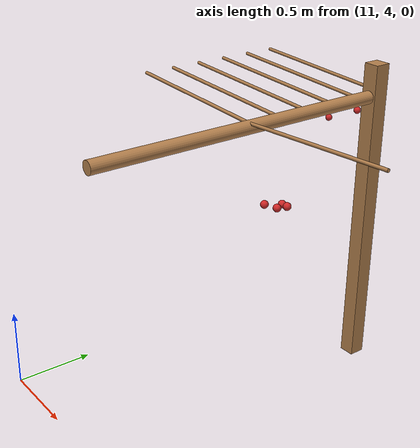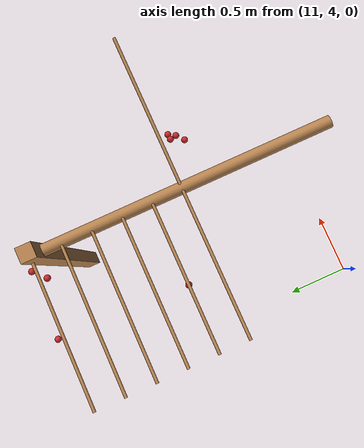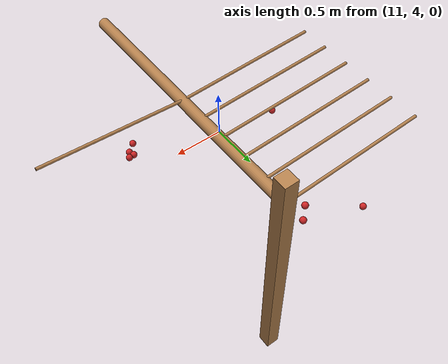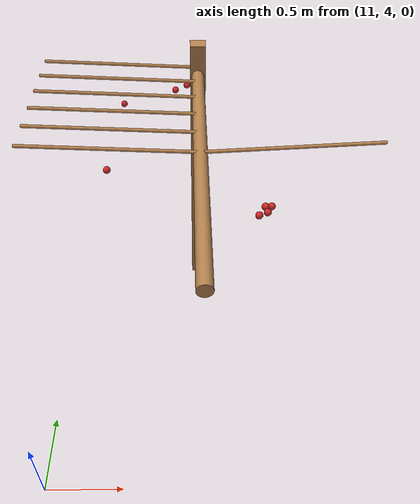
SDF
<sdf version="1.4">
 <model name="pergola">
  <include><name>post_69</name><pose>12.0 6.0 0 0 0 0</pose><uri>model://post</uri></include>
  <link name="baseBranch_62">
   <pose>12.0 5.0 1.8 1.5707963267948966 0 0</pose>
   <collision name="collision">
    <geometry><cylinder><radius>0.04</radius><length>1.94</length></cylinder></geometry>
   </collision>
   <visual name="visual">
    <geometry><cylinder><radius>0.04</radius><length>1.94</length></cylinder></geometry>
    <material><script><name>Gazebo/WoodFloor</name></script></material>
   </visual>
   <inertial>
    <mass>10</mass>
    <inertia>
     <ixx>3.140333333333333</ixx>
     <ixy>0.0</ixy>
     <ixz>0.0</ixz>
     <iyy>3.140333333333333</iyy>
     <iyz>0.0</iyz>
     <izz>0.008</izz>
    </inertia>
   </inertial>
  </link>
  <link name="vine_1051">
   <pose>11.5 5.03 1.85 0 -1.5208379310729538 0</pose>
   <collision name="collision">
    <geometry><cylinder><radius>0.01</radius><length>1.0012492197250393</length></cylinder></geometry>
   </collision>
   <visual name="visual">
    <geometry><cylinder><radius>0.01</radius><length>1.0012492197250393</length></cylinder></geometry>
    <material><script><name>Gazebo/WoodFloor</name></script></material>
   </visual>
   <inertial>
    <mass>5</mass>
    <inertia>
     <ixx>0.41783333333333345</ixx>
     <ixy>0.0</ixy>
     <ixz>0.0</ixz>
     <iyy>0.41783333333333345</iyy>
     <iyz>0.0</iyz>
     <izz>0.00025</izz>
    </inertia>
   </inertial>
  </link>
  <link name="vine_1053">
   <pose>11.5 5.23 1.85 0 -1.5208379310729538 0</pose>
   <collision name="collision">
    <geometry><cylinder><radius>0.01</radius><length>1.0012492197250393</length></cylinder></geometry>
   </collision>
   <visual name="visual">
    <geometry><cylinder><radius>0.01</radius><length>1.0012492197250393</length></cylinder></geometry>
    <material><script><name>Gazebo/WoodFloor</name></script></material>
   </visual>
   <inertial>
    <mass>5</mass>
    <inertia>
     <ixx>0.41783333333333345</ixx>
     <ixy>0.0</ixy>
     <ixz>0.0</ixz>
     <iyy>0.41783333333333345</iyy>
     <iyz>0.0</iyz>
     <izz>0.00025</izz>
    </inertia>
   </inertial>
  </link>
  <link name="vine_1055">
   <pose>11.5 5.430000000000001 1.85 0 -1.5208379310729538 0</pose>
   <collision name="collision">
    <geometry><cylinder><radius>0.01</radius><length>1.0012492197250393</length></cylinder></geometry>
   </collision>
   <visual name="visual">
    <geometry><cylinder><radius>0.01</radius><length>1.0012492197250393</length></cylinder></geometry>
    <material><script><name>Gazebo/WoodFloor</name></script></material>
   </visual>
   <inertial>
    <mass>5</mass>
    <inertia>
     <ixx>0.41783333333333345</ixx>
     <ixy>0.0</ixy>
     <ixz>0.0</ixz>
     <iyy>0.41783333333333345</iyy>
     <iyz>0.0</iyz>
     <izz>0.00025</izz>
    </inertia>
   </inertial>
  </link>
  <link name="vine_1057">
   <pose>11.5 5.630000000000001 1.85 0 -1.5208379310729538 0</pose>
   <collision name="collision">
    <geometry><cylinder><radius>0.01</radius><length>1.0012492197250393</length></cylinder></geometry>
   </collision>
   <visual name="visual">
    <geometry><cylinder><radius>0.01</radius><length>1.0012492197250393</length></cylinder></geometry>
    <material><script><name>Gazebo/WoodFloor</name></script></material>
   </visual>
   <inertial>
    <mass>5</mass>
    <inertia>
     <ixx>0.41783333333333345</ixx>
     <ixy>0.0</ixy>
     <ixz>0.0</ixz>
     <iyy>0.41783333333333345</iyy>
     <iyz>0.0</iyz>
     <izz>0.00025</izz>
    </inertia>
   </inertial>
  </link>
  <link name="vine_1059">
   <pose>11.5 5.830000000000001 1.85 0 -1.5208379310729538 0</pose>
   <collision name="collision">
    <geometry><cylinder><radius>0.01</radius><length>1.0012492197250393</length></cylinder></geometry>
   </collision>
   <visual name="visual">
    <geometry><cylinder><radius>0.01</radius><length>1.0012492197250393</length></cylinder></geometry>
    <material><script><name>Gazebo/WoodFloor</name></script></material>
   </visual>
   <inertial>
    <mass>5</mass>
    <inertia>
     <ixx>0.41783333333333345</ixx>
     <ixy>0.0</ixy>
     <ixz>0.0</ixz>
     <iyy>0.41783333333333345</iyy>
     <iyz>0.0</iyz>
     <izz>0.00025</izz>
    </inertia>
   </inertial>
  </link>
  <link name="vine_1061">
   <pose>11.5 6.03 1.85 0 -1.5208379310729538 0</pose>
   <collision name="collision">
    <geometry><cylinder><radius>0.01</radius><length>1.0012492197250393</length></cylinder></geometry>
   </collision>
   <visual name="visual">
    <geometry><cylinder><radius>0.01</radius><length>1.0012492197250393</length></cylinder></geometry>
    <material><script><name>Gazebo/WoodFloor</name></script></material>
   </visual>
   <inertial>
    <mass>5</mass>
    <inertia>
     <ixx>0.41783333333333345</ixx>
     <ixy>0.0</ixy>
     <ixz>0.0</ixz>
     <iyy>0.41783333333333345</iyy>
     <iyz>0.0</iyz>
     <izz>0.00025</izz>
    </inertia>
   </inertial>
  </link>
  <link name="vine_1250">
   <pose>12.5 5.03 1.85 0 1.5208379310729538 0</pose>
   <collision name="collision">
    <geometry><cylinder><radius>0.01</radius><length>1.0012492197250393</length></cylinder></geometry>
   </collision>
   <visual name="visual">
    <geometry><cylinder><radius>0.01</radius><length>1.0012492197250393</length></cylinder></geometry>
    <material><script><name>Gazebo/WoodFloor</name></script></material>
   </visual>
   <inertial>
    <mass>5</mass>
    <inertia>
     <ixx>0.41783333333333345</ixx>
     <ixy>0.0</ixy>
     <ixz>0.0</ixz>
     <iyy>0.41783333333333345</iyy>
     <iyz>0.0</iyz>
     <izz>0.00025</izz>
    </inertia>
   </inertial>
  </link>
  <link name="fruit_58">
   <pose>12.32798262968132 4.878452174120817 1.503461518768059 0 0 0</pose>
   <collision name="fruit_collision_58"><geometry><sphere><radius>0.022</radius></sphere></geometry></collision>
   <visual name="visual">
    <geometry><sphere><radius>0.022</radius></sphere></geometry>
    <material><script><name>Gazebo/Red</name></script></material>
   </visual>
   <inertial>
    <mass>0.05</mass>
    <inertia>
     <ixx>9.679999999999999e-06</ixx>
     <ixy>0.0</ixy>
     <ixz>0.0</ixz>
     <iyy>9.679999999999999e-06</iyy>
     <iyz>0.0</iyz>
     <izz>9.679999999999999e-06</izz>
    </inertia>
   </inertial>
   <sensor name="fruit_contact_58" type="contact">
    <contact><collision>fruit_collision_58</collision></contact>
   </sensor>
  </link>
  <link name="fruit_226">
   <pose>11.849043225729103 6.025061844370336 1.6655417865308362 0 0 0</pose>
   <collision name="fruit_collision_226"><geometry><sphere><radius>0.022</radius></sphere></geometry></collision>
   <visual name="visual">
    <geometry><sphere><radius>0.022</radius></sphere></geometry>
    <material><script><name>Gazebo/Red</name></script></material>
   </visual>
   <inertial>
    <mass>0.05</mass>
    <inertia>
     <ixx>9.679999999999999e-06</ixx>
     <ixy>0.0</ixy>
     <ixz>0.0</ixz>
     <iyy>9.679999999999999e-06</iyy>
     <iyz>0.0</iyz>
     <izz>9.679999999999999e-06</izz>
    </inertia>
   </inertial>
   <sensor name="fruit_contact_226" type="contact">
    <contact><collision>fruit_collision_226</collision></contact>
   </sensor>
  </link>
  <link name="fruit_255">
   <pose>11.475294377378981 6.1585016958467484 1.4912638856431528 0 0 0</pose>
   <collision name="fruit_collision_255"><geometry><sphere><radius>0.022</radius></sphere></geometry></collision>
   <visual name="visual">
    <geometry><sphere><radius>0.022</radius></sphere></geometry>
    <material><script><name>Gazebo/Red</name></script></material>
   </visual>
   <inertial>
    <mass>0.05</mass>
    <inertia>
     <ixx>9.679999999999999e-06</ixx>
     <ixy>0.0</ixy>
     <ixz>0.0</ixz>
     <iyy>9.679999999999999e-06</iyy>
     <iyz>0.0</iyz>
     <izz>9.679999999999999e-06</izz>
    </inertia>
   </inertial>
   <sensor name="fruit_contact_255" type="contact">
    <contact><collision>fruit_collision_255</collision></contact>
   </sensor>
  </link>
  <link name="fruit_392">
   <pose>12.380812904302793 4.919494245261567 1.4909992669430372 0 0 0</pose>
   <collision name="fruit_collision_392"><geometry><sphere><radius>0.022</radius></sphere></geometry></collision>
   <visual name="visual">
    <geometry><sphere><radius>0.022</radius></sphere></geometry>
    <material><script><name>Gazebo/Red</name></script></material>
   </visual>
   <inertial>
    <mass>0.05</mass>
    <inertia>
     <ixx>9.679999999999999e-06</ixx>
     <ixy>0.0</ixy>
     <ixz>0.0</ixz>
     <iyy>9.679999999999999e-06</iyy>
     <iyz>0.0</iyz>
     <izz>9.679999999999999e-06</izz>
    </inertia>
   </inertial>
   <sensor name="fruit_contact_392" type="contact">
    <contact><collision>fruit_collision_392</collision></contact>
   </sensor>
  </link>
  <link name="fruit_616">
   <pose>12.371259425267239 4.9621857097464925 1.4984248642823255 0 0 0</pose>
   <collision name="fruit_collision_616"><geometry><sphere><radius>0.022</radius></sphere></geometry></collision>
   <visual name="visual">
    <geometry><sphere><radius>0.022</radius></sphere></geometry>
    <material><script><name>Gazebo/Red</name></script></material>
   </visual>
   <inertial>
    <mass>0.05</mass>
    <inertia>
     <ixx>9.679999999999999e-06</ixx>
     <ixy>0.0</ixy>
     <ixz>0.0</ixz>
     <iyy>9.679999999999999e-06</iyy>
     <iyz>0.0</iyz>
     <izz>9.679999999999999e-06</izz>
    </inertia>
   </inertial>
   <sensor name="fruit_contact_616" type="contact">
    <contact><collision>fruit_collision_616</collision></contact>
   </sensor>
  </link>
  <link name="fruit_684">
   <pose>11.444639310324055 5.242401311393803 1.5646115168171106 0 0 0</pose>
   <collision name="fruit_collision_684"><geometry><sphere><radius>0.022</radius></sphere></geometry></collision>
   <visual name="visual">
    <geometry><sphere><radius>0.022</radius></sphere></geometry>
    <material><script><name>Gazebo/Red</name></script></material>
   </visual>
   <inertial>
    <mass>0.05</mass>
    <inertia>
     <ixx>9.679999999999999e-06</ixx>
     <ixy>0.0</ixy>
     <ixz>0.0</ixz>
     <iyy>9.679999999999999e-06</iyy>
     <iyz>0.0</iyz>
     <izz>9.679999999999999e-06</izz>
    </inertia>
   </inertial>
   <sensor name="fruit_contact_684" type="contact">
    <contact><collision>fruit_collision_684</collision></contact>
   </sensor>
  </link>
  <link name="fruit_795">
   <pose>11.92650506924534 6.096253371139212 1.6647492523277165 0 0 0</pose>
   <collision name="fruit_collision_795"><geometry><sphere><radius>0.022</radius></sphere></geometry></collision>
   <visual name="visual">
    <geometry><sphere><radius>0.022</radius></sphere></geometry>
    <material><script><name>Gazebo/Red</name></script></material>
   </visual>
   <inertial>
    <mass>0.05</mass>
    <inertia>
     <ixx>9.679999999999999e-06</ixx>
     <ixy>0.0</ixy>
     <ixz>0.0</ixz>
     <iyy>9.679999999999999e-06</iyy>
     <iyz>0.0</iyz>
     <izz>9.679999999999999e-06</izz>
    </inertia>
   </inertial>
   <sensor name="fruit_contact_795" type="contact">
    <contact><collision>fruit_collision_795</collision></contact>
   </sensor>
  </link>
  <link name="fruit_975">
   <pose>12.407092463847365 4.9650744379684495 1.4969474840700947 0 0 0</pose>
   <collision name="fruit_collision_975"><geometry><sphere><radius>0.022</radius></sphere></geometry></collision>
   <visual name="visual">
    <geometry><sphere><radius>0.022</radius></sphere></geometry>
    <material><script><name>Gazebo/Red</name></script></material>
   </visual>
   <inertial>
    <mass>0.05</mass>
    <inertia>
     <ixx>9.679999999999999e-06</ixx>
     <ixy>0.0</ixy>
     <ixz>0.0</ixz>
     <iyy>9.679999999999999e-06</iyy>
     <iyz>0.0</iyz>
     <izz>9.679999999999999e-06</izz>
    </inertia>
   </inertial>
   <sensor name="fruit_contact_975" type="contact">
    <contact><collision>fruit_collision_975</collision></contact>
   </sensor>
  </link>
 </model>
</sdf>
